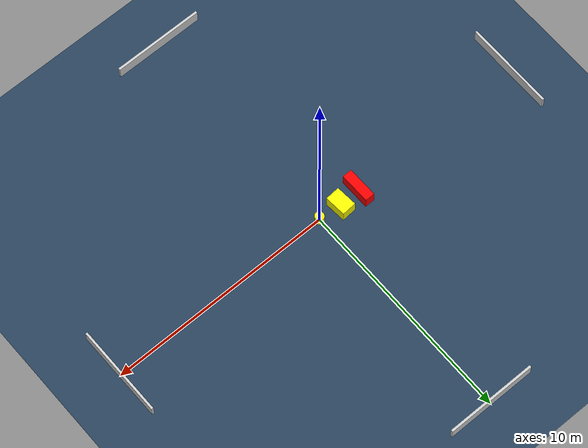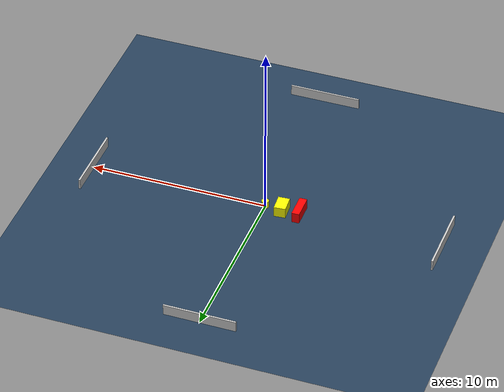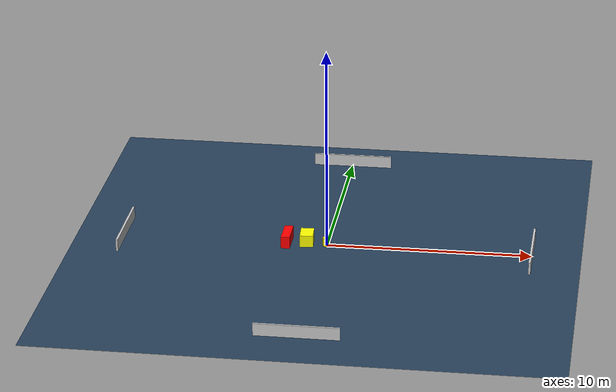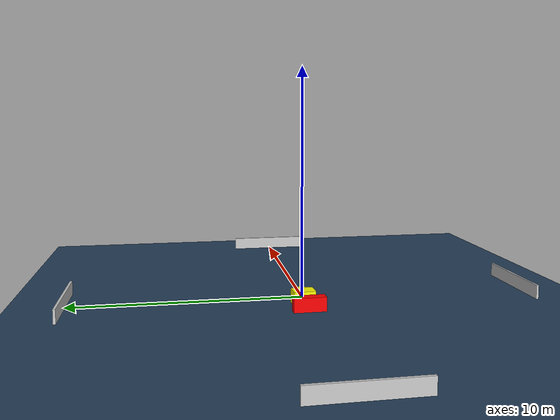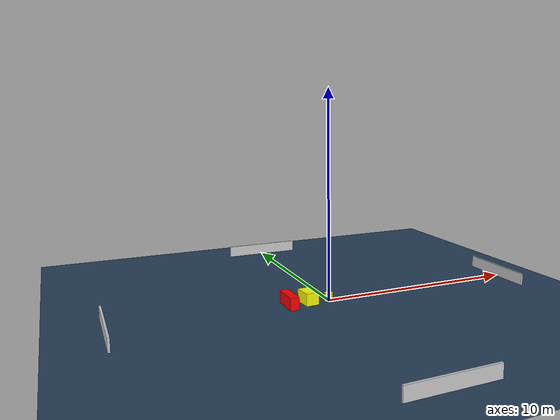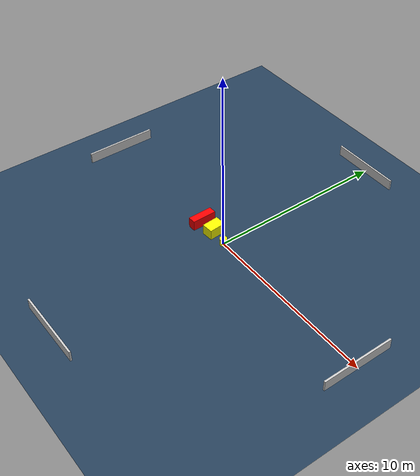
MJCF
<?xml version="1.0" ?>
<mujoco model="generated_environment">
  <option timestep="0.01" integrator="RK4" cone="elliptic"/>
  <default>
    <geom density="1"/>
  </default>
  <asset>
    <texture builtin="gradient" height="3072" name="skybox" rgb1="0.3 0.5 0.7" rgb2="0 0 0" type="skybox" width="512"/>
    <texture builtin="checker" height="300" name="groundplane" rgb1="0.2 0.3 0.4" rgb2="0.1 0.2 0.3" type="2d" width="300"/>
    <material name="groundplane" reflectance="0.2" texrepeat="5 5" texture="groundplane"/>
  </asset>
  <worldbody>
    <light dir="0 0 -1" directional="true" pos="0 0 1.5"/>
    <geom condim="3" friction="0.5 0.005 0.001" material="groundplane" name="floor" pos="0 0 0" size="0 0 0.05" type="plane"/>
    <body name="walls">
      <geom name="wall_1" condim="4" pos="-10.0 0.0 0.3" rgba="0.800000011920929 0.800000011920929 0.800000011920929 1.0" size="0.05 2.0 0.3" type="box"/>
      <geom name="wall_2" condim="4" pos="10.0 0.0 0.3" rgba="0.800000011920929 0.800000011920929 0.800000011920929 1.0" size="0.05 2.0 0.3" type="box"/>
      <geom name="wall_3" condim="4" pos="0.0 -10.0 0.3" rgba="0.800000011920929 0.800000011920929 0.800000011920929 1.0" size="2.0 0.05 0.3" type="box"/>
      <geom name="wall_4" condim="4" pos="0.0 10.0 0.3" rgba="0.800000011920929 0.800000011920929 0.800000011920929 1.0" size="2.0 0.05 0.3" type="box"/>
    </body>
    <body name="robot">
      <joint name="joint_x" type="slide" pos="0 0 0" axis="1 0 0"/>
      <joint name="joint_y" type="slide" pos="0 0 0" axis="0 1 0"/>
      <geom name="robot" type="cylinder" pos="0.0 0.0 0.2" size="0.2 0.2 0.0" mass="5.0" friction="1.0 0.005 0.0001" condim="4" rgba="1.0 1.0 0.0 1.0"/>
    </body>
    <body name="obstacle_1_movable">
      <geom name="obstacle_1_movable" condim="4" pos="-0.988254281115884 0.12101303902161728 0.3" euler="0 0 184.20608943721174" friction="0.0 0.005 0.001" rgba="1.0 1.0 0.0 1.0" size="0.3220998469324502 0.47033392731177204 0.3" type="box" mass="0.1"/>
      <joint type="free"/>
    </body>
    <body name="obstacle_2_static">
      <geom name="obstacle_2_static" condim="4" pos="-1.9605717497531299 0.057994707058430815 0.3" euler="0 0 270.5431453331103" friction="0.0 0.005 0.001" rgba="1.0 0.0 0.0 1.0" size="0.6824319241463955 0.2141372439484299 0.3" type="box"/>
    </body>
  </worldbody>
  <actuator>
    <motor name="actuator_x" joint="joint_x" gear="1" ctrlrange="-1 1"/>
    <motor name="actuator_y" joint="joint_y" gear="1" ctrlrange="-1 1"/>
  </actuator>
</mujoco>
